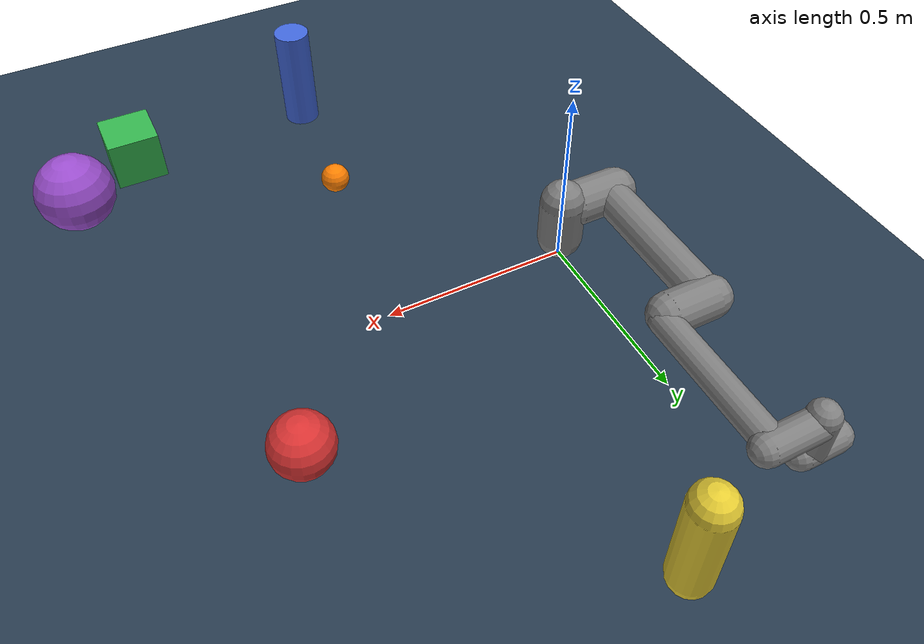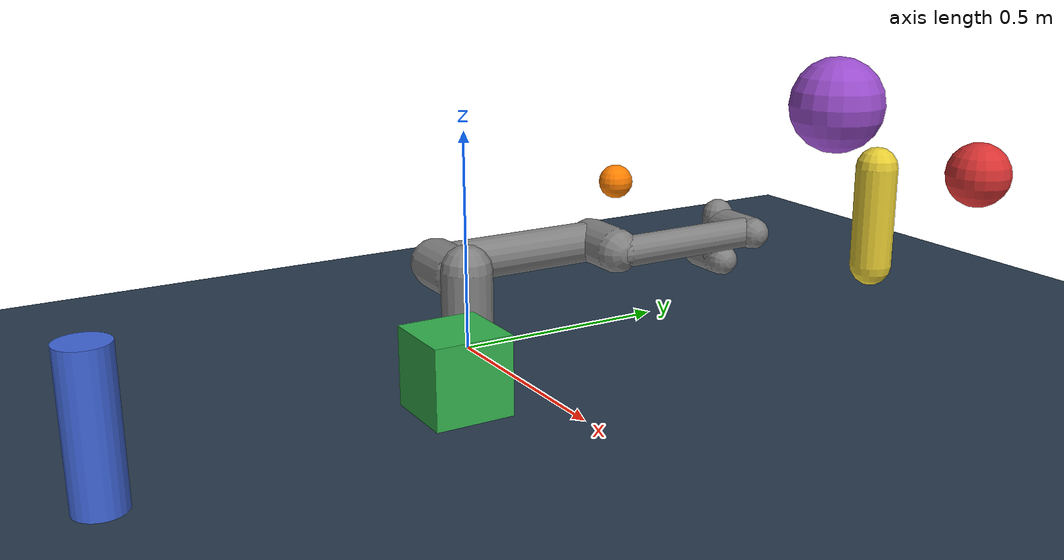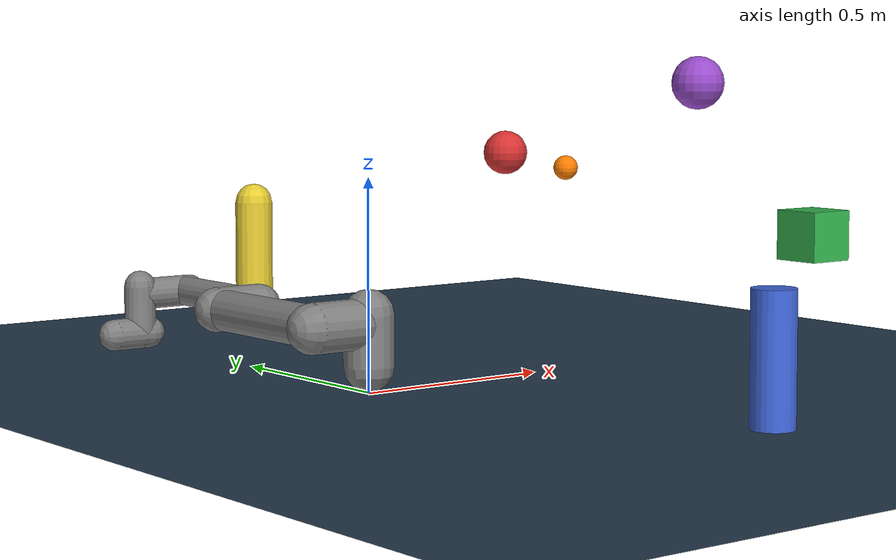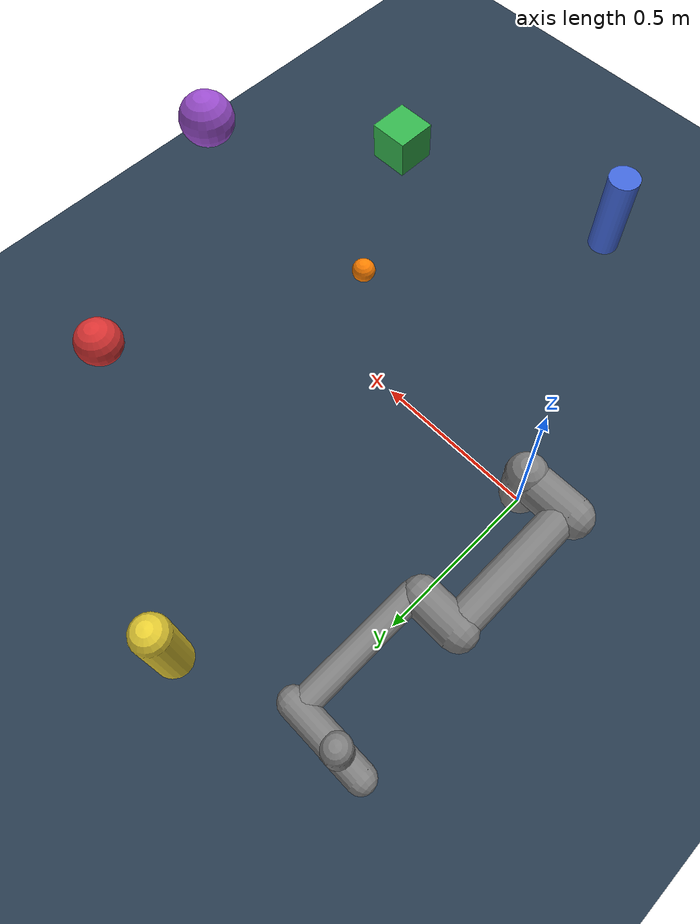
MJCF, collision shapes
<mujoco model="ur5e wrist cam scene">
  <include file="ur5e.xml"/>

  <statistic center="0.3 0 0.4" extent="1.2" meansize="0.08"/>

  <visual>
    <headlight diffuse="0.6 0.6 0.6" ambient="0.3 0.3 0.3" specular="0 0 0"/>
    <rgba haze="0.15 0.25 0.35 1"/>
    <global azimuth="130" elevation="-20"/>
  </visual>

  <asset>
    <texture type="skybox" builtin="gradient" rgb1="0.3 0.5 0.7" rgb2="0 0 0" width="512" height="3072"/>
    <texture name="grid" type="2d" builtin="checker" rgb1=".2 .3 .4" rgb2=".1 0.15 0.2" width="512" height="512"
      mark="cross" markrgb=".8 .8 .8"/>
    <material name="grid" texture="grid" texrepeat="2 2" texuniform="true" reflectance="0.2"/>
    <material name="target_mat" rgba="1 0.5 0 1" emission="0.5"/>
  </asset>

  <worldbody>
    <light pos="0 0 2" dir="0 0 -1" directional="true"/>
    <geom name="floor" size="2 2 0.05" type="plane" material="grid"/>

    <!-- Colorful landmarks for the wrist camera to sweep across. -->
    <geom name="lm_red" type="sphere" size="0.06" pos="0.9 0.6 0.5" rgba="0.85 0.2 0.2 1"/>
    <geom name="lm_green" type="box" size="0.06 0.06 0.06" pos="0.95 -0.5 0.35" rgba="0.2 0.7 0.3 1"/>
    <geom name="lm_blue" type="cylinder" size="0.05 0.15" pos="0.4 -0.9 0.15" rgba="0.25 0.4 0.85 1"/>
    <geom name="lm_yellow" type="capsule" size="0.05 0.12" pos="0.3 0.95 0.25" rgba="0.9 0.8 0.2 1"/>
    <geom name="lm_purple" type="sphere" size="0.07" pos="1.1 0.05 0.7" rgba="0.6 0.3 0.8 1"/>

    <!-- Bright target the camera keeps centered. -->
    <body name="target" pos="0.6 0 0.5" mocap="true">
      <geom type="sphere" size="0.03" contype="0" conaffinity="0" material="target_mat"/>
    </body>
  </worldbody>
</mujoco>

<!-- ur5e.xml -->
<mujoco model="ur5e">
  <compiler angle="radian" meshdir="assets" autolimits="true"/>

  <option integrator="implicitfast"/>

  <default>
    <default class="ur5e">
      <default class="visual">
        <geom type="mesh" contype="0" conaffinity="0" group="2"/>
      </default>
      <default class="collision">
        <geom type="capsule" group="3"/>
        <default class="eef_collision">
          <geom type="cylinder"/>
        </default>
      </default>
      <joint axis="0 1 0" range="-6.28319 6.28319"/>
      <default class="joint_limited">
        <joint range="-3.1415 3.1415"/>
      </default>
      <default class="position">
        <position ctrlrange="-6.2831 6.2831" kp="2000" kv="100" forcerange="-150 150"/>
        <default class="position_limited">
          <position ctrlrange="-3.1415 3.1415"/>
        </default>
        <default class="position_small">
          <position kp="500" kv="25" forcerange="-28 28"/>
        </default>
      </default>
    </default>
  </default>

  <asset>
    <material name="black" rgba="0.033 0.033 0.033 1"/>
    <material name="jointgray" rgba="0.278 0.278 0.278 1"/>
    <material name="linkgray" rgba="0.82 0.82 0.82 1"/>
    <material name="urblue" rgba="0.49 0.678 0.8 1"/>

    <mesh file="base_0.obj"/>
    <mesh file="base_1.obj"/>
    <mesh file="shoulder_0.obj"/>
    <mesh file="shoulder_1.obj"/>
    <mesh file="shoulder_2.obj"/>
    <mesh file="upperarm_0.obj"/>
    <mesh file="upperarm_1.obj"/>
    <mesh file="upperarm_2.obj"/>
    <mesh file="upperarm_3.obj"/>
    <mesh file="forearm_0.obj"/>
    <mesh file="forearm_1.obj"/>
    <mesh file="forearm_2.obj"/>
    <mesh file="forearm_3.obj"/>
    <mesh file="wrist1_0.obj"/>
    <mesh file="wrist1_1.obj"/>
    <mesh file="wrist1_2.obj"/>
    <mesh file="wrist2_0.obj"/>
    <mesh file="wrist2_1.obj"/>
    <mesh file="wrist2_2.obj"/>
    <mesh file="wrist3.obj"/>
  </asset>

  <worldbody>
    <body name="base" quat="1 0 0 1" childclass="ur5e">
      <inertial mass="4" pos="0 0 0" diaginertia="0.00443333156 0.00443333156 0.0072"/>
      <geom mesh="base_0" material="black" class="visual"/>
      <geom mesh="base_1" material="jointgray" class="visual"/>
      <body name="shoulder_link" pos="0 0 0.163">
        <inertial mass="3.7" pos="0 0 0" diaginertia="0.0102675 0.0102675 0.00666"/>
        <joint name="shoulder_pan" axis="0 0 1"/>
        <geom mesh="shoulder_0" material="urblue" class="visual"/>
        <geom mesh="shoulder_1" material="black" class="visual"/>
        <geom mesh="shoulder_2" material="jointgray" class="visual"/>
        <geom class="collision" size="0.06 0.06" pos="0 0 -0.04"/>
        <body name="upper_arm_link" pos="0 0.138 0" quat="1 0 1 0">
          <inertial mass="8.393" pos="0 0 0.2125" diaginertia="0.133886 0.133886 0.0151074"/>
          <joint name="shoulder_lift"/>
          <geom mesh="upperarm_0" material="linkgray" class="visual"/>
          <geom mesh="upperarm_1" material="black" class="visual"/>
          <geom mesh="upperarm_2" material="jointgray" class="visual"/>
          <geom mesh="upperarm_3" material="urblue" class="visual"/>
          <geom class="collision" pos="0 -0.04 0" quat="1 1 0 0" size="0.06 0.06"/>
          <geom class="collision" size="0.05 0.2" pos="0 0 0.2"/>
          <body name="forearm_link" pos="0 -0.131 0.425">
            <inertial mass="2.275" pos="0 0 0.196" diaginertia="0.0311796 0.0311796 0.004095"/>
            <joint name="elbow" class="joint_limited"/>
            <geom mesh="forearm_0" material="urblue" class="visual"/>
            <geom mesh="forearm_1" material="linkgray" class="visual"/>
            <geom mesh="forearm_2" material="black" class="visual"/>
            <geom mesh="forearm_3" material="jointgray" class="visual"/>
            <geom class="collision" pos="0 0.08 0" quat="1 1 0 0" size="0.055 0.06"/>
            <geom class="collision" size="0.038 0.19" pos="0 0 0.2"/>
            <body name="wrist_1_link" pos="0 0 0.392" quat="1 0 1 0">
              <inertial mass="1.219" pos="0 0.127 0" diaginertia="0.0025599 0.0025599 0.0021942"/>
              <joint name="wrist_1"/>
              <geom mesh="wrist1_0" material="black" class="visual"/>
              <geom mesh="wrist1_1" material="urblue" class="visual"/>
              <geom mesh="wrist1_2" material="jointgray" class="visual"/>
              <geom class="collision" pos="0 0.05 0" quat="1 1 0 0" size="0.04 0.07"/>
              <body name="wrist_2_link" pos="0 0.127 0">
                <inertial mass="1.219" pos="0 0 0.1" diaginertia="0.0025599 0.0025599 0.0021942"/>
                <joint name="wrist_2" axis="0 0 1"/>
                <geom mesh="wrist2_0" material="black" class="visual"/>
                <geom mesh="wrist2_1" material="urblue" class="visual"/>
                <geom mesh="wrist2_2" material="jointgray" class="visual"/>
                <geom name="wrist_2_link" class="collision" size="0.04 0.06" pos="0 0 0.04"/>
                <body name="wrist_3_link" pos="0 0 0.1">
                  <inertial mass="0.1879" pos="0 0.0771683 0" quat="1 0 0 1"
                    diaginertia="0.000132134 9.90863e-05 9.90863e-05"/>
                  <joint name="wrist_3"/>
                  <geom material="linkgray" mesh="wrist3" class="visual"/>
                  <geom name="wrist_3_link" class="collision" pos="0 0.025 0" quat="1 1 0 0" size="0.04 0.05"/>
                  <site name="attachment_site" size="0.01" pos="0 0.1 0" quat="-1 1 1 1" rgba="1 0 0 1" group="1"/>
                </body>
              </body>
            </body>
          </body>
        </body>
      </body>
    </body>
  </worldbody>

  <actuator>
    <position class="position" name="shoulder_pan" joint="shoulder_pan"/>
    <position class="position" name="shoulder_lift" joint="shoulder_lift"/>
    <position class="position_limited" name="elbow" joint="elbow"/>
    <position class="position_small" name="wrist_1" joint="wrist_1"/>
    <position class="position_small" name="wrist_2" joint="wrist_2"/>
    <position class="position_small" name="wrist_3" joint="wrist_3"/>
  </actuator>

  <keyframe>
    <key name="home" qpos="-1.5708 -1.5708 1.5708 -1.5708 -1.5708 0" ctrl="-1.5708 -1.5708 1.5708 -1.5708 -1.5708 0"/>
  </keyframe>
</mujoco>
